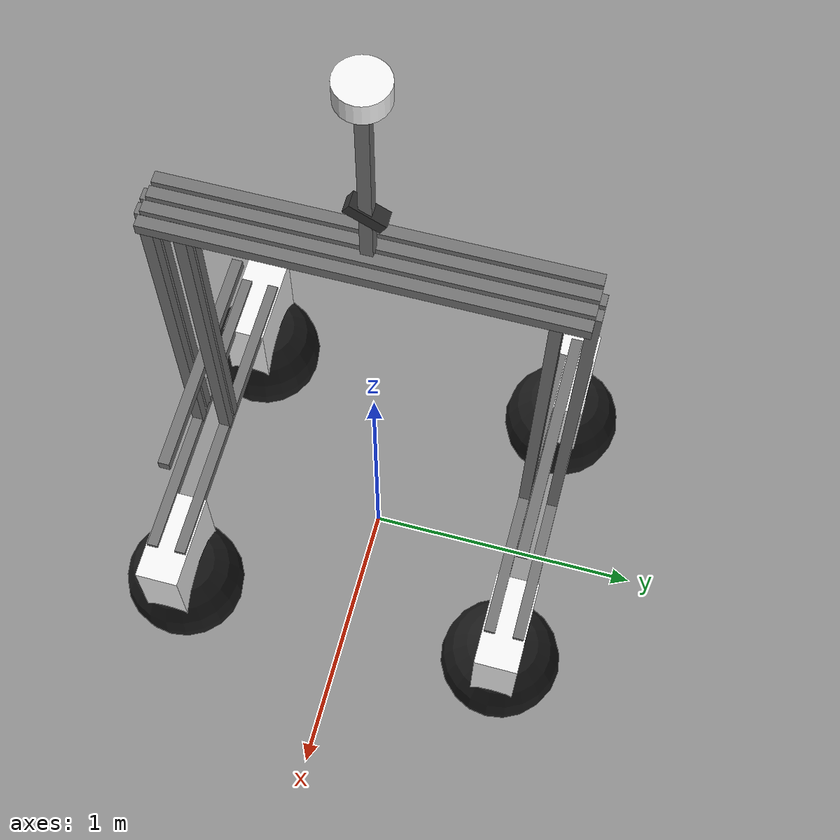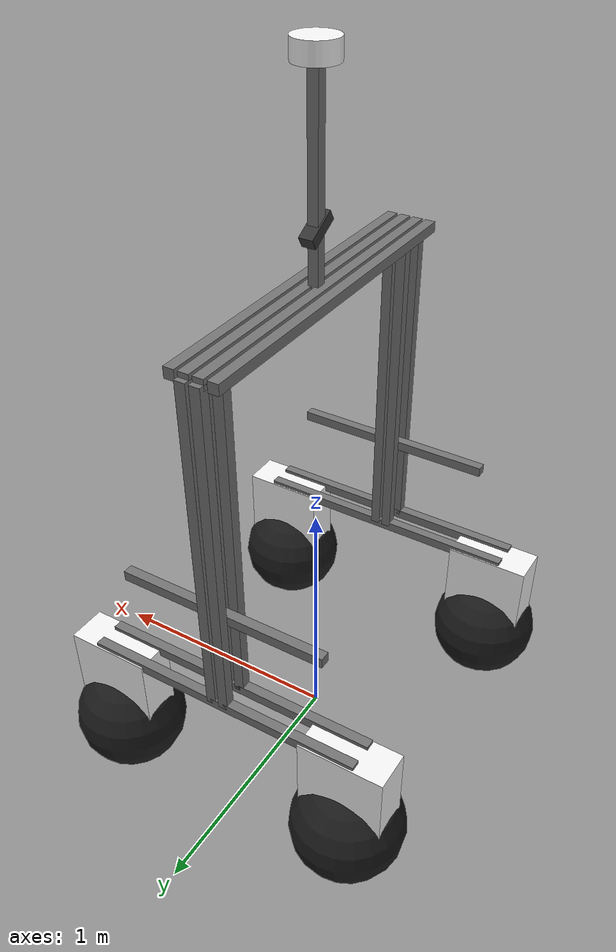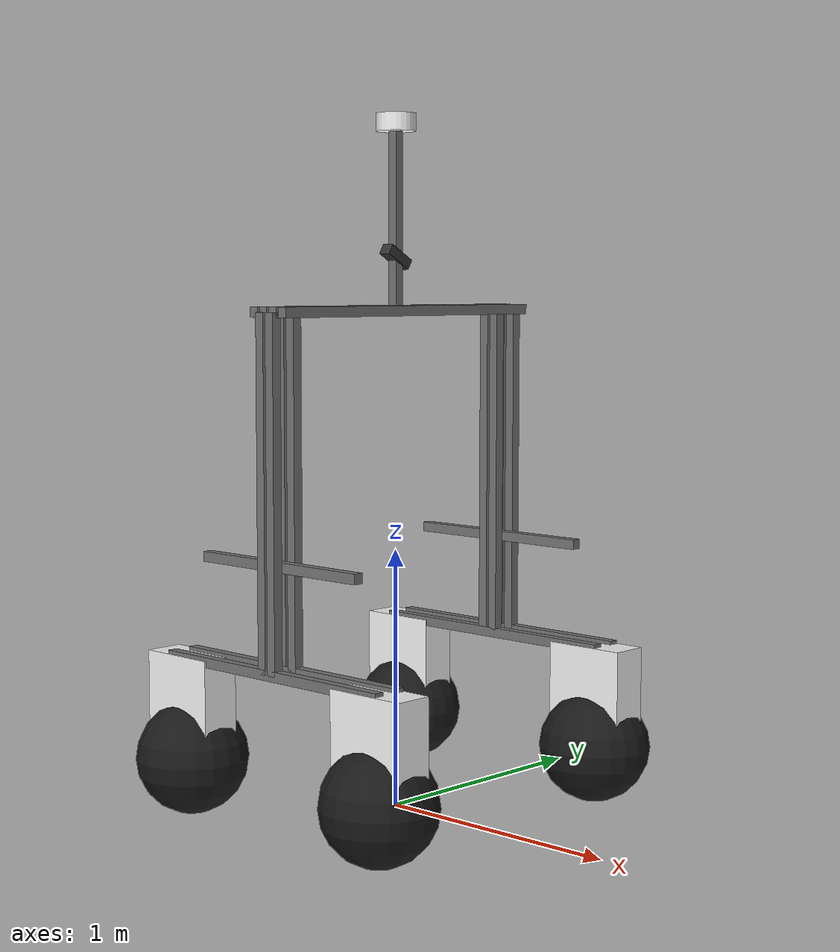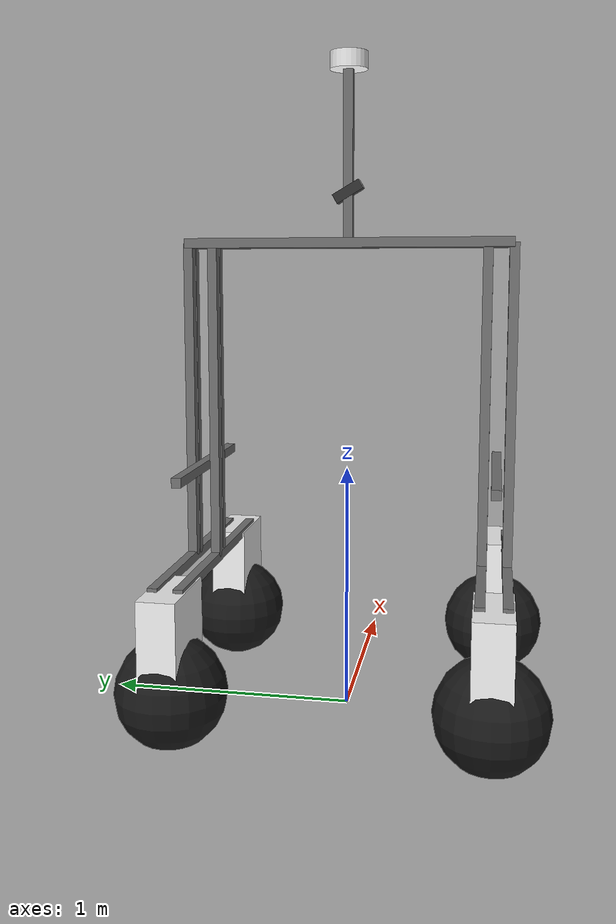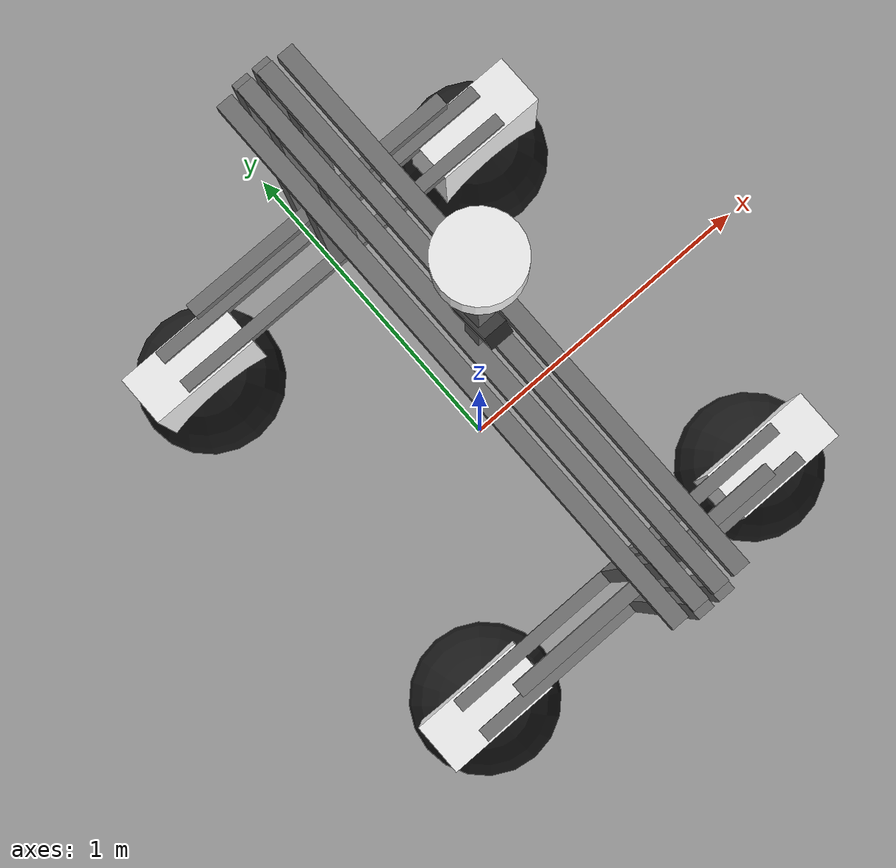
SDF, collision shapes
<?xml version="1.0"?>
<sdf version="1.9">
  <model name="amiga">
    <static>false</static>

    <!-- BASE LINK (main frame)                                        -->
    <!-- Origin at ground. 1.5" tube = 0.038m. Clearance = 0.612m.    -->
    <link name="base_link">
      <inertial>
        <mass>90.0</mass>
        <pose>0 0 1.262 0 0 0</pose>
        <inertia>
          <ixx>15.0</ixx> <ixy>0</ixy> <ixz>0</ixz>
          <iyy>13.0</iyy> <iyz>0</iyz>
          <izz>8.0</izz>
        </inertia>
      </inertial>

      <!-- Side rails at z=0.612 -->
      <visual name="rail_lo"><pose>0 0.65 0.612 0 0 0</pose>
        <geometry><box><size>1.1 0.038 0.038</size></box></geometry>
        <material><ambient>0.35 0.35 0.35 1</ambient><diffuse>0.45 0.45 0.45 1</diffuse><specular>0.3 0.3 0.3 1</specular></material>
      </visual>
      <collision name="rail_lo_col"><pose>0 0.65 0.612 0 0 0</pose><geometry><box><size>1.1 0.038 0.038</size></box></geometry></collision>

      <visual name="rail_li"><pose>0 0.55 0.612 0 0 0</pose>
        <geometry><box><size>1.1 0.038 0.038</size></box></geometry>
        <material><ambient>0.35 0.35 0.35 1</ambient><diffuse>0.45 0.45 0.45 1</diffuse><specular>0.3 0.3 0.3 1</specular></material>
      </visual>
      <collision name="rail_li_col"><pose>0 0.55 0.612 0 0 0</pose><geometry><box><size>1.1 0.038 0.038</size></box></geometry></collision>

      <visual name="rail_ro"><pose>0 -0.65 0.612 0 0 0</pose>
        <geometry><box><size>1.1 0.038 0.038</size></box></geometry>
        <material><ambient>0.35 0.35 0.35 1</ambient><diffuse>0.45 0.45 0.45 1</diffuse><specular>0.3 0.3 0.3 1</specular></material>
      </visual>
      <collision name="rail_ro_col"><pose>0 -0.65 0.612 0 0 0</pose><geometry><box><size>1.1 0.038 0.038</size></box></geometry></collision>

      <visual name="rail_ri"><pose>0 -0.55 0.612 0 0 0</pose>
        <geometry><box><size>1.1 0.038 0.038</size></box></geometry>
        <material><ambient>0.35 0.35 0.35 1</ambient><diffuse>0.45 0.45 0.45 1</diffuse><specular>0.3 0.3 0.3 1</specular></material>
      </visual>
      <collision name="rail_ri_col"><pose>0 -0.55 0.612 0 0 0</pose><geometry><box><size>1.1 0.038 0.038</size></box></geometry></collision>

      <!-- 8 Vertical uprights (z=0.612 to 1.912, center=1.262, height=1.3) -->
      <visual name="up_lo1"><pose>-0.025 0.65 1.262 0 0 0</pose><geometry><box><size>0.038 0.038 1.3</size></box></geometry>
        <material><ambient>0.35 0.35 0.35 1</ambient><diffuse>0.45 0.45 0.45 1</diffuse><specular>0.3 0.3 0.3 1</specular></material></visual>
      <collision name="up_lo1_c"><pose>-0.025 0.65 1.262 0 0 0</pose><geometry><box><size>0.038 0.038 1.3</size></box></geometry></collision>
      <visual name="up_lo2"><pose>0.025 0.65 1.262 0 0 0</pose><geometry><box><size>0.038 0.038 1.3</size></box></geometry>
        <material><ambient>0.35 0.35 0.35 1</ambient><diffuse>0.45 0.45 0.45 1</diffuse><specular>0.3 0.3 0.3 1</specular></material></visual>
      <collision name="up_lo2_c"><pose>0.025 0.65 1.262 0 0 0</pose><geometry><box><size>0.038 0.038 1.3</size></box></geometry></collision>

      <visual name="up_li1"><pose>-0.025 0.55 1.262 0 0 0</pose><geometry><box><size>0.038 0.038 1.3</size></box></geometry>
        <material><ambient>0.35 0.35 0.35 1</ambient><diffuse>0.45 0.45 0.45 1</diffuse><specular>0.3 0.3 0.3 1</specular></material></visual>
      <collision name="up_li1_c"><pose>-0.025 0.55 1.262 0 0 0</pose><geometry><box><size>0.038 0.038 1.3</size></box></geometry></collision>
      <visual name="up_li2"><pose>0.025 0.55 1.262 0 0 0</pose><geometry><box><size>0.038 0.038 1.3</size></box></geometry>
        <material><ambient>0.35 0.35 0.35 1</ambient><diffuse>0.45 0.45 0.45 1</diffuse><specular>0.3 0.3 0.3 1</specular></material></visual>
      <collision name="up_li2_c"><pose>0.025 0.55 1.262 0 0 0</pose><geometry><box><size>0.038 0.038 1.3</size></box></geometry></collision>

      <visual name="up_ri1"><pose>-0.025 -0.55 1.262 0 0 0</pose><geometry><box><size>0.038 0.038 1.3</size></box></geometry>
        <material><ambient>0.35 0.35 0.35 1</ambient><diffuse>0.45 0.45 0.45 1</diffuse><specular>0.3 0.3 0.3 1</specular></material></visual>
      <collision name="up_ri1_c"><pose>-0.025 -0.55 1.262 0 0 0</pose><geometry><box><size>0.038 0.038 1.3</size></box></geometry></collision>
      <visual name="up_ri2"><pose>0.025 -0.55 1.262 0 0 0</pose><geometry><box><size>0.038 0.038 1.3</size></box></geometry>
        <material><ambient>0.35 0.35 0.35 1</ambient><diffuse>0.45 0.45 0.45 1</diffuse><specular>0.3 0.3 0.3 1</specular></material></visual>
      <collision name="up_ri2_c"><pose>0.025 -0.55 1.262 0 0 0</pose><geometry><box><size>0.038 0.038 1.3</size></box></geometry></collision>

      <visual name="up_ro1"><pose>-0.025 -0.65 1.262 0 0 0</pose><geometry><box><size>0.038 0.038 1.3</size></box></geometry>
        <material><ambient>0.35 0.35 0.35 1</ambient><diffuse>0.45 0.45 0.45 1</diffuse><specular>0.3 0.3 0.3 1</specular></material></visual>
      <collision name="up_ro1_c"><pose>-0.025 -0.65 1.262 0 0 0</pose><geometry><box><size>0.038 0.038 1.3</size></box></geometry></collision>
      <visual name="up_ro2"><pose>0.025 -0.65 1.262 0 0 0</pose><geometry><box><size>0.038 0.038 1.3</size></box></geometry>
        <material><ambient>0.35 0.35 0.35 1</ambient><diffuse>0.45 0.45 0.45 1</diffuse><specular>0.3 0.3 0.3 1</specular></material></visual>
      <collision name="up_ro2_c"><pose>0.025 -0.65 1.262 0 0 0</pose><geometry><box><size>0.038 0.038 1.3</size></box></geometry></collision>

      <!-- Mid-height suspension support bars at z=1.0 -->
      <visual name="susp_l"><pose>0 0.60 1.0 0 0 0</pose><geometry><box><size>0.8 0.038 0.038</size></box></geometry>
        <material><ambient>0.35 0.35 0.35 1</ambient><diffuse>0.45 0.45 0.45 1</diffuse><specular>0.3 0.3 0.3 1</specular></material></visual>
      <collision name="susp_l_c"><pose>0 0.60 1.0 0 0 0</pose><geometry><box><size>0.8 0.038 0.038</size></box></geometry></collision>
      <visual name="susp_r"><pose>0 -0.60 1.0 0 0 0</pose><geometry><box><size>0.8 0.038 0.038</size></box></geometry>
        <material><ambient>0.35 0.35 0.35 1</ambient><diffuse>0.45 0.45 0.45 1</diffuse><specular>0.3 0.3 0.3 1</specular></material></visual>
      <collision name="susp_r_c"><pose>0 -0.60 1.0 0 0 0</pose><geometry><box><size>0.8 0.038 0.038</size></box></geometry></collision>

      <!-- 4 Top cross braces at z=1.912 -->
      <visual name="br1"><pose>-0.075 0 1.912 0 0 0</pose><geometry><box><size>0.038 1.3 0.038</size></box></geometry>
        <material><ambient>0.35 0.35 0.35 1</ambient><diffuse>0.45 0.45 0.45 1</diffuse><specular>0.3 0.3 0.3 1</specular></material></visual>
      <collision name="br1_c"><pose>-0.075 0 1.912 0 0 0</pose><geometry><box><size>0.038 1.3 0.038</size></box></geometry></collision>
      <visual name="br2"><pose>-0.025 0 1.912 0 0 0</pose><geometry><box><size>0.038 1.3 0.038</size></box></geometry>
        <material><ambient>0.35 0.35 0.35 1</ambient><diffuse>0.45 0.45 0.45 1</diffuse><specular>0.3 0.3 0.3 1</specular></material></visual>
      <collision name="br2_c"><pose>-0.025 0 1.912 0 0 0</pose><geometry><box><size>0.038 1.3 0.038</size></box></geometry></collision>
      <visual name="br3"><pose>0.025 0 1.912 0 0 0</pose><geometry><box><size>0.038 1.3 0.038</size></box></geometry>
        <material><ambient>0.35 0.35 0.35 1</ambient><diffuse>0.45 0.45 0.45 1</diffuse><specular>0.3 0.3 0.3 1</specular></material></visual>
      <collision name="br3_c"><pose>0.025 0 1.912 0 0 0</pose><geometry><box><size>0.038 1.3 0.038</size></box></geometry></collision>
      <visual name="br4"><pose>0.075 0 1.912 0 0 0</pose><geometry><box><size>0.038 1.3 0.038</size></box></geometry>
        <material><ambient>0.35 0.35 0.35 1</ambient><diffuse>0.45 0.45 0.45 1</diffuse><specular>0.3 0.3 0.3 1</specular></material></visual>
      <collision name="br4_c"><pose>0.075 0 1.912 0 0 0</pose><geometry><box><size>0.038 1.3 0.038</size></box></geometry></collision>

      <!-- Antenna pole (z=1.912 to 2.612) -->
      <visual name="ant"><pose>0 0 2.262 0 0 0</pose><geometry><box><size>0.038 0.038 0.7</size></box></geometry>
        <material><ambient>0.35 0.35 0.35 1</ambient><diffuse>0.45 0.45 0.45 1</diffuse><specular>0.3 0.3 0.3 1</specular></material></visual>
      <collision name="ant_c"><pose>0 0 2.262 0 0 0</pose><geometry><box><size>0.038 0.038 0.7</size></box></geometry></collision>
    </link>

    <!-- FRONT LEFT: SUSPENSION + FORK + WHEEL                        -->
    <link name="fl_fork_link">
      <pose relative_to="fl_suspension_joint">0 0 0 0 0 0</pose>
      <inertial>
        <mass>5.0</mass>
        <pose>0 0 -0.2 0 0 0</pose>
        <inertia><ixx>0.094</ixx><ixy>0</ixy><ixz>0</ixz><iyy>0.115</iyy><iyz>0</iyz><izz>0.069</izz></inertia>
      </inertial>
      <visual name="fl_fork_v"><pose>0 0 -0.396 1.5708 0 3.14159</pose>
        <geometry><mesh><uri>meshes/smart_fork.stl</uri></mesh></geometry>
        <material><ambient>0.90 0.90 0.90 1</ambient><diffuse>0.95 0.95 0.95 1</diffuse><specular>0.5 0.5 0.5 1</specular></material></visual>
      <collision name="fl_fork_c"><pose>0 0 -0.2 0 0 0</pose><geometry><box><size>0.33 0.15 0.41</size></box></geometry></collision>
    </link>

    <joint name="fl_suspension_joint" type="prismatic">
      <parent>base_link</parent>
      <child>fl_fork_link</child>
      <pose relative_to="base_link">0.5 0.6 0.612 0 0 0</pose>
      <axis>
        <xyz>0 0 1</xyz>
        <dynamics><damping>1500</damping><friction>50</friction><spring_stiffness>44000</spring_stiffness><spring_reference>0.0</spring_reference></dynamics>
        <limit><lower>-0.025</lower><upper>0.025</upper><effort>5000</effort><velocity>0.5</velocity></limit>
      </axis>
    </joint>

    <link name="front_left_wheel_link">
      <pose relative_to="front_left_wheel_joint">0 0 0 0 0 0</pose>
      <inertial>
        <mass>8.0</mass>
        <inertia><ixx>0.10</ixx><ixy>0</ixy><ixz>0</ixz><iyy>0.19</iyy><iyz>0</iyz><izz>0.10</izz></inertia>
      </inertial>
      <visual name="fl_wh_v"><pose>0 0 0 1.5708 0 0</pose>
        <geometry><mesh><uri>meshes/wheel.stl</uri></mesh></geometry>
        <material><ambient>0.05 0.05 0.05 1</ambient><diffuse>0.10 0.10 0.10 1</diffuse><specular>0.15 0.15 0.15 1</specular></material></visual>
      <collision name="fl_wh_c">
        <geometry><sphere><radius>0.216</radius></sphere></geometry>
        <surface><friction><ode><mu>1.5</mu><mu2>1.5</mu2></ode></friction>
        <contact><ode><kp>1e7</kp><kd>1000</kd><min_depth>0.001</min_depth></ode></contact></surface></collision>
    </link>

    <joint name="front_left_wheel_joint" type="revolute">
      <parent>fl_fork_link</parent>
      <child>front_left_wheel_link</child>
      <pose relative_to="fl_fork_link">0 0 -0.396 0 0 0</pose>
      <axis>
        <xyz>0 1 0</xyz>
        <dynamics><damping>5.0</damping></dynamics>
        <limit><lower>-1e16</lower><upper>1e16</upper><effort>140</effort></limit>
      </axis>
    </joint>

    <!-- FRONT RIGHT: SUSPENSION + FORK + WHEEL                       -->
    <link name="fr_fork_link">
      <pose relative_to="fr_suspension_joint">0 0 0 0 0 0</pose>
      <inertial>
        <mass>5.0</mass>
        <pose>0 0 -0.2 0 0 0</pose>
        <inertia><ixx>0.094</ixx><ixy>0</ixy><ixz>0</ixz><iyy>0.115</iyy><iyz>0</iyz><izz>0.069</izz></inertia>
      </inertial>
      <visual name="fr_fork_v"><pose>0 0 -0.396 1.5708 0 0</pose>
        <geometry><mesh><uri>meshes/smart_fork.stl</uri></mesh></geometry>
        <material><ambient>0.90 0.90 0.90 1</ambient><diffuse>0.95 0.95 0.95 1</diffuse><specular>0.5 0.5 0.5 1</specular></material></visual>
      <collision name="fr_fork_c"><pose>0 0 -0.2 0 0 0</pose><geometry><box><size>0.33 0.15 0.41</size></box></geometry></collision>
    </link>

    <joint name="fr_suspension_joint" type="prismatic">
      <parent>base_link</parent>
      <child>fr_fork_link</child>
      <pose relative_to="base_link">0.5 -0.6 0.612 0 0 0</pose>
      <axis>
        <xyz>0 0 1</xyz>
        <dynamics><damping>1500</damping><friction>50</friction><spring_stiffness>44000</spring_stiffness><spring_reference>0.0</spring_reference></dynamics>
        <limit><lower>-0.025</lower><upper>0.025</upper><effort>5000</effort><velocity>0.5</velocity></limit>
      </axis>
    </joint>

    <link name="front_right_wheel_link">
      <pose relative_to="front_right_wheel_joint">0 0 0 0 0 0</pose>
      <inertial>
        <mass>8.0</mass>
        <inertia><ixx>0.10</ixx><ixy>0</ixy><ixz>0</ixz><iyy>0.19</iyy><iyz>0</iyz><izz>0.10</izz></inertia>
      </inertial>
      <visual name="fr_wh_v"><pose>0 0 0 1.5708 0 0</pose>
        <geometry><mesh><uri>meshes/wheel.stl</uri></mesh></geometry>
        <material><ambient>0.05 0.05 0.05 1</ambient><diffuse>0.10 0.10 0.10 1</diffuse><specular>0.15 0.15 0.15 1</specular></material></visual>
      <collision name="fr_wh_c">
        <geometry><sphere><radius>0.216</radius></sphere></geometry>
        <surface><friction><ode><mu>1.5</mu><mu2>1.5</mu2></ode></friction>
        <contact><ode><kp>1e7</kp><kd>1000</kd><min_depth>0.001</min_depth></ode></contact></surface></collision>
    </link>

    <joint name="front_right_wheel_joint" type="revolute">
      <parent>fr_fork_link</parent>
      <child>front_right_wheel_link</child>
      <pose relative_to="fr_fork_link">0 0 -0.396 0 0 0</pose>
      <axis>
        <xyz>0 1 0</xyz>
        <dynamics><damping>5.0</damping></dynamics>
        <limit><lower>-1e16</lower><upper>1e16</upper><effort>140</effort></limit>
      </axis>
    </joint>

    <!-- REAR LEFT: SUSPENSION + FORK + WHEEL                         -->
    <link name="rl_fork_link">
      <pose relative_to="rl_suspension_joint">0 0 0 0 0 0</pose>
      <inertial>
        <mass>5.0</mass>
        <pose>0 0 -0.2 0 0 0</pose>
        <inertia><ixx>0.094</ixx><ixy>0</ixy><ixz>0</ixz><iyy>0.115</iyy><iyz>0</iyz><izz>0.069</izz></inertia>
      </inertial>
      <visual name="rl_fork_v"><pose>0 0 -0.396 1.5708 0 3.14159</pose>
        <geometry><mesh><uri>meshes/smart_fork.stl</uri></mesh></geometry>
        <material><ambient>0.90 0.90 0.90 1</ambient><diffuse>0.95 0.95 0.95 1</diffuse><specular>0.5 0.5 0.5 1</specular></material></visual>
      <collision name="rl_fork_c"><pose>0 0 -0.2 0 0 0</pose><geometry><box><size>0.33 0.15 0.41</size></box></geometry></collision>
    </link>

    <joint name="rl_suspension_joint" type="prismatic">
      <parent>base_link</parent>
      <child>rl_fork_link</child>
      <pose relative_to="base_link">-0.5 0.6 0.612 0 0 0</pose>
      <axis>
        <xyz>0 0 1</xyz>
        <dynamics><damping>1500</damping><friction>50</friction><spring_stiffness>44000</spring_stiffness><spring_reference>0.0</spring_reference></dynamics>
        <limit><lower>-0.025</lower><upper>0.025</upper><effort>5000</effort><velocity>0.5</velocity></limit>
      </axis>
    </joint>

    <link name="rear_left_wheel_link">
      <pose relative_to="rear_left_wheel_joint">0 0 0 0 0 0</pose>
      <inertial>
        <mass>8.0</mass>
        <inertia><ixx>0.10</ixx><ixy>0</ixy><ixz>0</ixz><iyy>0.19</iyy><iyz>0</iyz><izz>0.10</izz></inertia>
      </inertial>
      <visual name="rl_wh_v"><pose>0 0 0 1.5708 0 0</pose>
        <geometry><mesh><uri>meshes/wheel.stl</uri></mesh></geometry>
        <material><ambient>0.05 0.05 0.05 1</ambient><diffuse>0.10 0.10 0.10 1</diffuse><specular>0.15 0.15 0.15 1</specular></material></visual>
      <collision name="rl_wh_c">
        <geometry><sphere><radius>0.216</radius></sphere></geometry>
        <surface><friction><ode><mu>1.5</mu><mu2>1.5</mu2></ode></friction>
        <contact><ode><kp>1e7</kp><kd>1000</kd><min_depth>0.001</min_depth></ode></contact></surface></collision>
    </link>

    <joint name="rear_left_wheel_joint" type="revolute">
      <parent>rl_fork_link</parent>
      <child>rear_left_wheel_link</child>
      <pose relative_to="rl_fork_link">0 0 -0.396 0 0 0</pose>
      <axis>
        <xyz>0 1 0</xyz>
        <dynamics><damping>5.0</damping></dynamics>
        <limit><lower>-1e16</lower><upper>1e16</upper><effort>140</effort></limit>
      </axis>
    </joint>

    <!-- REAR RIGHT: SUSPENSION + FORK + WHEEL                        -->
    <link name="rr_fork_link">
      <pose relative_to="rr_suspension_joint">0 0 0 0 0 0</pose>
      <inertial>
        <mass>5.0</mass>
        <pose>0 0 -0.2 0 0 0</pose>
        <inertia><ixx>0.094</ixx><ixy>0</ixy><ixz>0</ixz><iyy>0.115</iyy><iyz>0</iyz><izz>0.069</izz></inertia>
      </inertial>
      <visual name="rr_fork_v"><pose>0 0 -0.396 1.5708 0 0</pose>
        <geometry><mesh><uri>meshes/smart_fork.stl</uri></mesh></geometry>
        <material><ambient>0.90 0.90 0.90 1</ambient><diffuse>0.95 0.95 0.95 1</diffuse><specular>0.5 0.5 0.5 1</specular></material></visual>
      <collision name="rr_fork_c"><pose>0 0 -0.2 0 0 0</pose><geometry><box><size>0.33 0.15 0.41</size></box></geometry></collision>
    </link>

    <joint name="rr_suspension_joint" type="prismatic">
      <parent>base_link</parent>
      <child>rr_fork_link</child>
      <pose relative_to="base_link">-0.5 -0.6 0.612 0 0 0</pose>
      <axis>
        <xyz>0 0 1</xyz>
        <dynamics><damping>1500</damping><friction>50</friction><spring_stiffness>44000</spring_stiffness><spring_reference>0.0</spring_reference></dynamics>
        <limit><lower>-0.025</lower><upper>0.025</upper><effort>5000</effort><velocity>0.5</velocity></limit>
      </axis>
    </joint>

    <link name="rear_right_wheel_link">
      <pose relative_to="rear_right_wheel_joint">0 0 0 0 0 0</pose>
      <inertial>
        <mass>8.0</mass>
        <inertia><ixx>0.10</ixx><ixy>0</ixy><ixz>0</ixz><iyy>0.19</iyy><iyz>0</iyz><izz>0.10</izz></inertia>
      </inertial>
      <visual name="rr_wh_v"><pose>0 0 0 1.5708 0 0</pose>
        <geometry><mesh><uri>meshes/wheel.stl</uri></mesh></geometry>
        <material><ambient>0.05 0.05 0.05 1</ambient><diffuse>0.10 0.10 0.10 1</diffuse><specular>0.15 0.15 0.15 1</specular></material></visual>
      <collision name="rr_wh_c">
        <geometry><sphere><radius>0.216</radius></sphere></geometry>
        <surface><friction><ode><mu>1.5</mu><mu2>1.5</mu2></ode></friction>
        <contact><ode><kp>1e7</kp><kd>1000</kd><min_depth>0.001</min_depth></ode></contact></surface></collision>
    </link>

    <joint name="rear_right_wheel_joint" type="revolute">
      <parent>rr_fork_link</parent>
      <child>rear_right_wheel_link</child>
      <pose relative_to="rr_fork_link">0 0 -0.396 0 0 0</pose>
      <axis>
        <xyz>0 1 0</xyz>
        <dynamics><damping>5.0</damping></dynamics>
        <limit><lower>-1e16</lower><upper>1e16</upper><effort>140</effort></limit>
      </axis>
    </joint>

    <!-- OAK-D CAMERA                                                  -->
    <link name="oak_link">
      <pose relative_to="oak_joint">0 0 0 0 0 0</pose>
      <inertial>
        <mass>0.5</mass>
        <inertia><ixx>0.0001</ixx><ixy>0</ixy><ixz>0</ixz><iyy>0.0001</iyy><iyz>0</iyz><izz>0.0001</izz></inertia>
      </inertial>
      <visual name="oak_v"><pose>0 0 0 3.14159 -0.5236 -1.5708</pose>
        <geometry><mesh><uri>meshes/oak-d_simplified.stl</uri></mesh></geometry>
        <material><ambient>0.15 0.15 0.15 1</ambient><diffuse>0.20 0.20 0.20 1</diffuse><specular>0.5 0.5 0.5 1</specular></material></visual>
      <visual name="cam_housing"><pose>-0.08 -0.022 -0.04 3.14159 -0.5236 -1.5708</pose>
        <geometry><mesh><uri>meshes/camera_housing.stl</uri></mesh></geometry>
        <material><ambient>0.10 0.10 0.10 1</ambient><diffuse>0.15 0.15 0.15 1</diffuse><specular>0.3 0.3 0.3 1</specular></material></visual>
      <visual name="cam_bracket"><pose>0 0 0.02 0 0 0</pose>
        <geometry><mesh><uri>meshes/camera_bracket.stl</uri></mesh></geometry>
        <material><ambient>0.60 0.59 0.56 1</ambient><diffuse>0.70 0.69 0.66 1</diffuse><specular>0.5 0.5 0.5 1</specular></material></visual>
      <collision name="oak_c"><pose>0 0 0 3.14159 -0.5236 -1.5708</pose><geometry><box><size>0.12 0.05 0.04</size></box></geometry></collision>

      <sensor name="oak_d_camera" type="rgbd_camera">
        <always_on>true</always_on>
        <update_rate>15</update_rate>
        <pose>0 0 0 0 0.5236 0</pose>
        <camera name="oak_d">
          <horizontal_fov>1.2217</horizontal_fov>
          <image><width>640</width><height>480</height><format>R8G8B8</format></image>
          <clip><near>0.2</near><far>20.0</far></clip>
          <depth_camera><clip><near>0.2</near><far>10.0</far></clip></depth_camera>
        </camera>
      </sensor>
    </link>

    <joint name="oak_joint" type="fixed">
      <parent>base_link</parent>
      <child>oak_link</child>
      <pose relative_to="base_link">0 0 2.112 0 0 0</pose>
    </joint>

    <!-- GPS ANTENNA                                                   -->
    <link name="gps_link">
      <pose relative_to="gps_joint">0 0 0 0 0 0</pose>
      <inertial>
        <mass>1.5</mass>
        <inertia><ixx>0.0001</ixx><ixy>0</ixy><ixz>0</ixz><iyy>0.0001</iyy><iyz>0</iyz><izz>0.0001</izz></inertia>
      </inertial>
      <visual name="gps_v">
        <geometry><mesh><uri>meshes/gps_antenna.stl</uri></mesh></geometry>
        <material><ambient>0.90 0.90 0.90 1</ambient><diffuse>0.95 0.95 0.95 1</diffuse><specular>0.5 0.5 0.5 1</specular></material></visual>
      <collision name="gps_c"><geometry><cylinder><radius>0.075</radius><length>0.066</length></cylinder></geometry></collision>

      <sensor name="navsat" type="navsat">
        <always_on>true</always_on>
        <update_rate>10</update_rate>
      </sensor>
    </link>

    <joint name="gps_joint" type="fixed">
      <parent>base_link</parent>
      <child>gps_link</child>
      <pose relative_to="base_link">0 0 2.612 0 0 0</pose>
    </joint>

    <!-- IMU SENSOR                                                    -->
    <link name="imu_link">
      <pose relative_to="imu_joint">0 0 0 0 0 0</pose>
      <inertial>
        <mass>0.01</mass>
        <inertia><ixx>0.00001</ixx><ixy>0</ixy><ixz>0</ixz><iyy>0.00001</iyy><iyz>0</iyz><izz>0.00001</izz></inertia>
      </inertial>
      <sensor name="imu_sensor" type="imu">
        <always_on>true</always_on>
        <update_rate>100</update_rate>
        <imu>
          <angular_velocity>
            <x><noise type="gaussian"><mean>0</mean><stddev>0.0002</stddev></noise></x>
            <y><noise type="gaussian"><mean>0</mean><stddev>0.0002</stddev></noise></y>
            <z><noise type="gaussian"><mean>0</mean><stddev>0.0002</stddev></noise></z>
          </angular_velocity>
          <linear_acceleration>
            <x><noise type="gaussian"><mean>0</mean><stddev>0.017</stddev></noise></x>
            <y><noise type="gaussian"><mean>0</mean><stddev>0.017</stddev></noise></y>
            <z><noise type="gaussian"><mean>0</mean><stddev>0.017</stddev></noise></z>
          </linear_acceleration>
        </imu>
      </sensor>
    </link>

    <joint name="imu_joint" type="fixed">
      <parent>base_link</parent>
      <child>imu_link</child>
      <pose relative_to="base_link">0 0 1.912 0 0 0</pose>
    </joint>

    <!-- PLUGINS                                                       -->
    <plugin filename="ignition-gazebo-diff-drive-system" name="ignition::gazebo::systems::DiffDrive">
      <left_joint>front_left_wheel_joint</left_joint>
      <left_joint>rear_left_wheel_joint</left_joint>
      <right_joint>front_right_wheel_joint</right_joint>
      <right_joint>rear_right_wheel_joint</right_joint>
      <wheel_separation>1.2</wheel_separation>
      <wheel_radius>0.216</wheel_radius>
      <max_linear_acceleration>1.0</max_linear_acceleration>
      <min_linear_acceleration>-1.0</min_linear_acceleration>
      <max_angular_acceleration>2.0</max_angular_acceleration>
      <min_angular_acceleration>-2.0</min_angular_acceleration>
      <topic>cmd_vel</topic>
      <odom_topic>odom</odom_topic>
      <frame_id>odom</frame_id>
      <child_frame_id>base_link</child_frame_id>
      <odom_publish_frequency>20</odom_publish_frequency>
    </plugin>

    <plugin filename="ignition-gazebo-joint-state-publisher-system" name="ignition::gazebo::systems::JointStatePublisher"/>
    <plugin filename="ignition-gazebo-imu-system" name="ignition::gazebo::systems::Imu"/>
    <plugin filename="ignition-gazebo-navsat-system" name="ignition::gazebo::systems::NavSat"/>
    <plugin filename="ignition-gazebo-sensors-system" name="ignition::gazebo::systems::Sensors">
      <render_engine>ogre2</render_engine>
    </plugin>

  </model>
</sdf>
